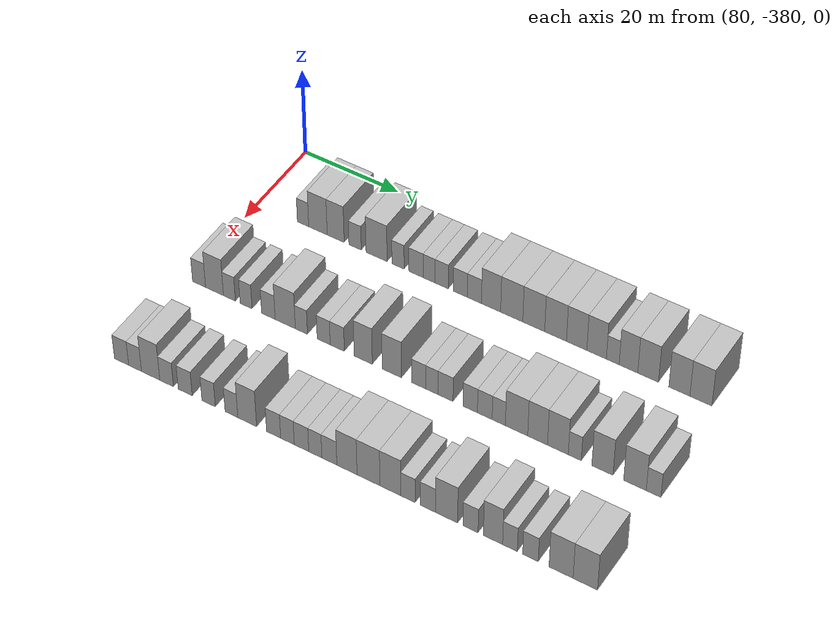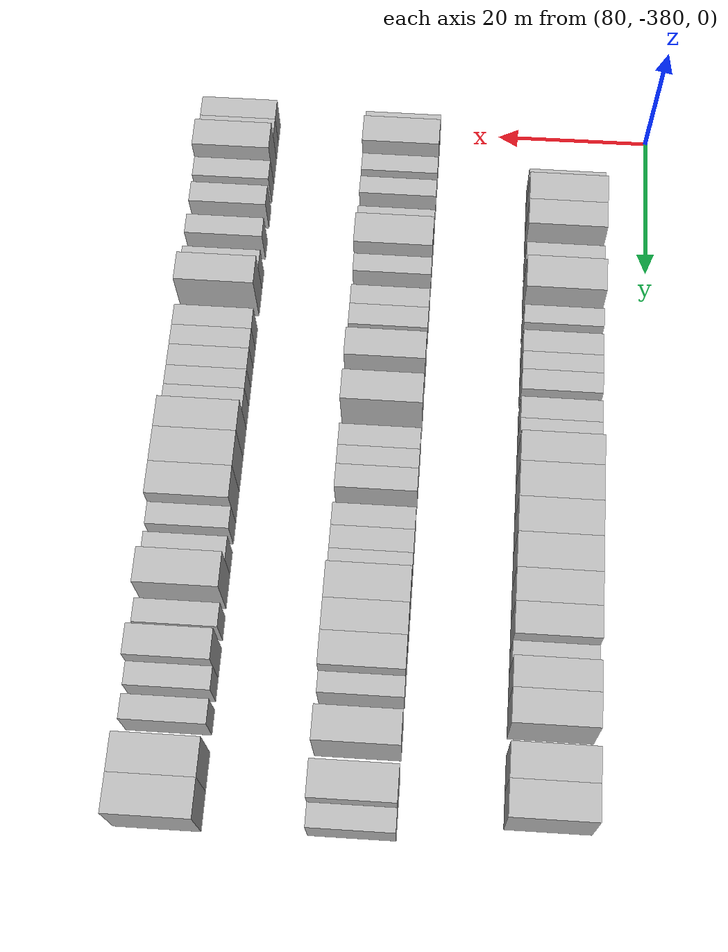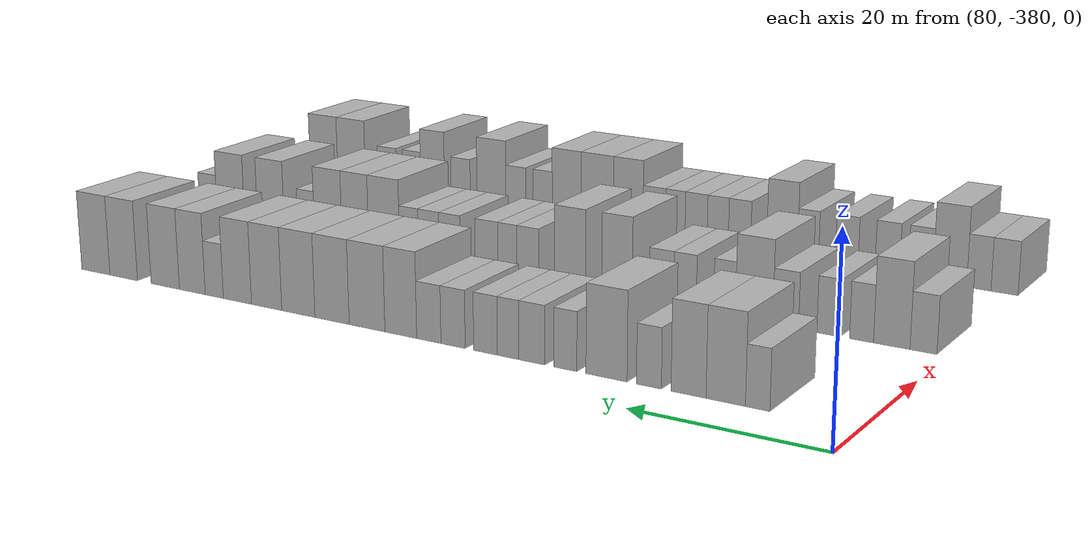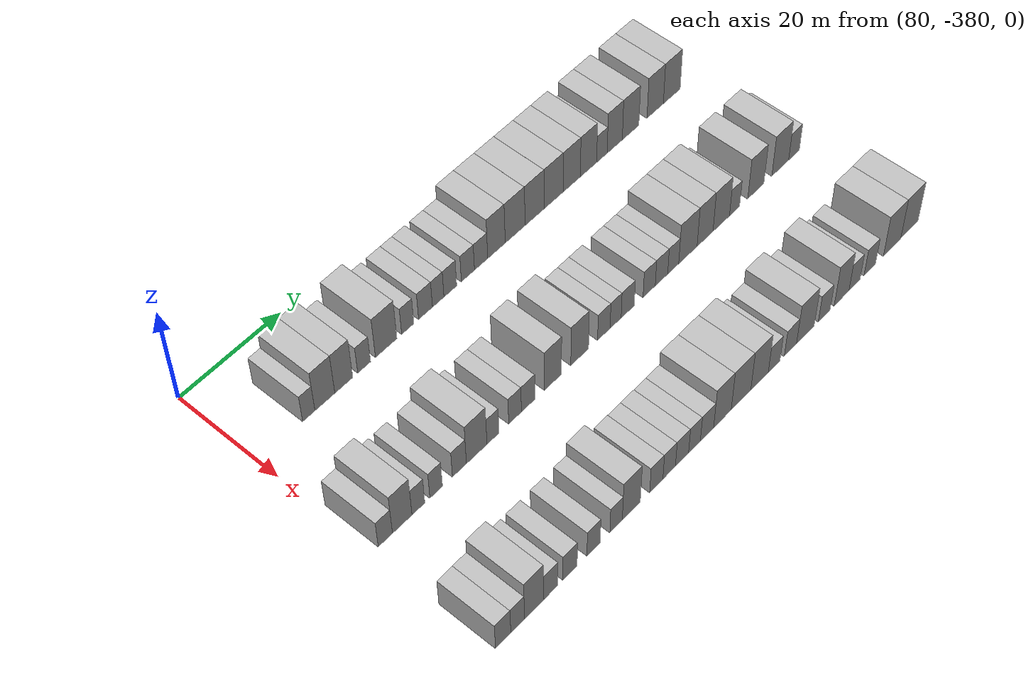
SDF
<sdf version="1.6">
 <world name="default">
  <model name="building_587">
   <static>1</static>
   <pose>91.0000 -370.1607 0 0.000000 0.000000 0.000000</pose>
   <link name="link">
    <pose>0 0 3.00 0 0 0</pose>
    <collision name="collision"><geometry><box><size>10.0000 2.4173 6.0000</size></box></geometry></collision>
    <visual name="visual">
     <cast_shadows>0</cast_shadows>
     <geometry><box><size>10.0000 2.4173 6.0000</size></box></geometry>
     <material>
      <script>
       <uri>model://HANNAS_wall/materials/scripts</uri>
       <uri>model://HANNAS_wall/materials/textures</uri>
       <name>vrc/HANNAS_wall</name>
      </script>
     </material>
    </visual>
   </link>
  </model>
  <model name="building_588">
   <static>1</static>
   <pose>91.0000 -366.9707 0 0.000000 0.000000 0.000000</pose>
   <link name="link">
    <pose>0 0 4.50 0 0 0</pose>
    <collision name="collision"><geometry><box><size>10.0000 3.9626 9.0000</size></box></geometry></collision>
    <visual name="visual">
     <cast_shadows>0</cast_shadows>
     <geometry><box><size>10.0000 3.9626 9.0000</size></box></geometry>
     <material>
      <script>
       <uri>model://HANNAS_wall/materials/scripts</uri>
       <uri>model://HANNAS_wall/materials/textures</uri>
       <name>vrc/HANNAS_wall</name>
      </script>
     </material>
    </visual>
   </link>
  </model>
  <model name="building_589">
   <static>1</static>
   <pose>91.0000 -363.1864 0 0.000000 0.000000 0.000000</pose>
   <link name="link">
    <pose>0 0 4.50 0 0 0</pose>
    <collision name="collision"><geometry><box><size>10.0000 3.6061 9.0000</size></box></geometry></collision>
    <visual name="visual">
     <cast_shadows>0</cast_shadows>
     <geometry><box><size>10.0000 3.6061 9.0000</size></box></geometry>
     <material>
      <script>
       <uri>model://HANNAS_wall/materials/scripts</uri>
       <uri>model://HANNAS_wall/materials/textures</uri>
       <name>vrc/HANNAS_wall</name>
      </script>
     </material>
    </visual>
   </link>
  </model>
  <model name="building_590">
   <static>1</static>
   <pose>91.0000 -359.0739 0 0.000000 0.000000 0.000000</pose>
   <link name="link">
    <pose>0 0 3.00 0 0 0</pose>
    <collision name="collision"><geometry><box><size>10.0000 2.6188 6.0000</size></box></geometry></collision>
    <visual name="visual">
     <cast_shadows>0</cast_shadows>
     <geometry><box><size>10.0000 2.6188 6.0000</size></box></geometry>
     <material>
      <script>
       <uri>model://HANNAS_wall/materials/scripts</uri>
       <uri>model://HANNAS_wall/materials/textures</uri>
       <name>vrc/HANNAS_wall</name>
      </script>
     </material>
    </visual>
   </link>
  </model>
  <model name="building_591">
   <static>1</static>
   <pose>91.0000 -354.5499 0 0.000000 0.000000 0.000000</pose>
   <link name="link">
    <pose>0 0 4.50 0 0 0</pose>
    <collision name="collision"><geometry><box><size>10.0000 4.4292 9.0000</size></box></geometry></collision>
    <visual name="visual">
     <cast_shadows>0</cast_shadows>
     <geometry><box><size>10.0000 4.4292 9.0000</size></box></geometry>
     <material>
      <script>
       <uri>model://HANNAS_wall/materials/scripts</uri>
       <uri>model://HANNAS_wall/materials/textures</uri>
       <name>vrc/HANNAS_wall</name>
      </script>
     </material>
    </visual>
   </link>
  </model>
  <model name="building_592">
   <static>1</static>
   <pose>91.0000 -350.0612 0 0.000000 0.000000 0.000000</pose>
   <link name="link">
    <pose>0 0 3.00 0 0 0</pose>
    <collision name="collision"><geometry><box><size>10.0000 2.5483 6.0000</size></box></geometry></collision>
    <visual name="visual">
     <cast_shadows>0</cast_shadows>
     <geometry><box><size>10.0000 2.5483 6.0000</size></box></geometry>
     <material>
      <script>
       <uri>model://HANNAS_wall/materials/scripts</uri>
       <uri>model://HANNAS_wall/materials/textures</uri>
       <name>vrc/HANNAS_wall</name>
      </script>
     </material>
    </visual>
   </link>
  </model>
  <model name="building_593">
   <static>1</static>
   <pose>91.0000 -346.3164 0 0.000000 0.000000 0.000000</pose>
   <link name="link">
    <pose>0 0 3.00 0 0 0</pose>
    <collision name="collision"><geometry><box><size>10.0000 2.9412 6.0000</size></box></geometry></collision>
    <visual name="visual">
     <cast_shadows>0</cast_shadows>
     <geometry><box><size>10.0000 2.9412 6.0000</size></box></geometry>
     <material>
      <script>
       <uri>model://HANNAS_wall/materials/scripts</uri>
       <uri>model://HANNAS_wall/materials/textures</uri>
       <name>vrc/HANNAS_wall</name>
      </script>
     </material>
    </visual>
   </link>
  </model>
  <model name="building_594">
   <static>1</static>
   <pose>91.0000 -343.6193 0 0.000000 0.000000 0.000000</pose>
   <link name="link">
    <pose>0 0 3.00 0 0 0</pose>
    <collision name="collision"><geometry><box><size>10.0000 2.4532 6.0000</size></box></geometry></collision>
    <visual name="visual">
     <cast_shadows>0</cast_shadows>
     <geometry><box><size>10.0000 2.4532 6.0000</size></box></geometry>
     <material>
      <script>
       <uri>model://HANNAS_wall/materials/scripts</uri>
       <uri>model://HANNAS_wall/materials/textures</uri>
       <name>vrc/HANNAS_wall</name>
      </script>
     </material>
    </visual>
   </link>
  </model>
  <model name="building_595">
   <static>1</static>
   <pose>91.0000 -341.0211 0 0.000000 0.000000 0.000000</pose>
   <link name="link">
    <pose>0 0 3.00 0 0 0</pose>
    <collision name="collision"><geometry><box><size>10.0000 2.7432 6.0000</size></box></geometry></collision>
    <visual name="visual">
     <cast_shadows>0</cast_shadows>
     <geometry><box><size>10.0000 2.7432 6.0000</size></box></geometry>
     <material>
      <script>
       <uri>model://HANNAS_wall/materials/scripts</uri>
       <uri>model://HANNAS_wall/materials/textures</uri>
       <name>vrc/HANNAS_wall</name>
      </script>
     </material>
    </visual>
   </link>
  </model>
  <model name="building_596">
   <static>1</static>
   <pose>91.0000 -337.2160 0 0.000000 0.000000 0.000000</pose>
   <link name="link">
    <pose>0 0 3.00 0 0 0</pose>
    <collision name="collision"><geometry><box><size>10.0000 2.8670 6.0000</size></box></geometry></collision>
    <visual name="visual">
     <cast_shadows>0</cast_shadows>
     <geometry><box><size>10.0000 2.8670 6.0000</size></box></geometry>
     <material>
      <script>
       <uri>model://HANNAS_wall/materials/scripts</uri>
       <uri>model://HANNAS_wall/materials/textures</uri>
       <name>vrc/HANNAS_wall</name>
      </script>
     </material>
    </visual>
   </link>
  </model>
  <model name="building_597">
   <static>1</static>
   <pose>91.0000 -334.3270 0 0.000000 0.000000 0.000000</pose>
   <link name="link">
    <pose>0 0 3.00 0 0 0</pose>
    <collision name="collision"><geometry><box><size>10.0000 2.9109 6.0000</size></box></geometry></collision>
    <visual name="visual">
     <cast_shadows>0</cast_shadows>
     <geometry><box><size>10.0000 2.9109 6.0000</size></box></geometry>
     <material>
      <script>
       <uri>model://HANNAS_wall/materials/scripts</uri>
       <uri>model://HANNAS_wall/materials/textures</uri>
       <name>vrc/HANNAS_wall</name>
      </script>
     </material>
    </visual>
   </link>
  </model>
  <model name="building_598">
   <static>1</static>
   <pose>91.0000 -330.9276 0 0.000000 0.000000 0.000000</pose>
   <link name="link">
    <pose>0 0 4.50 0 0 0</pose>
    <collision name="collision"><geometry><box><size>10.0000 3.8880 9.0000</size></box></geometry></collision>
    <visual name="visual">
     <cast_shadows>0</cast_shadows>
     <geometry><box><size>10.0000 3.8880 9.0000</size></box></geometry>
     <material>
      <script>
       <uri>model://HANNAS_wall/materials/scripts</uri>
       <uri>model://HANNAS_wall/materials/textures</uri>
       <name>vrc/HANNAS_wall</name>
      </script>
     </material>
    </visual>
   </link>
  </model>
  <model name="building_599">
   <static>1</static>
   <pose>91.0000 -326.7497 0 0.000000 0.000000 0.000000</pose>
   <link name="link">
    <pose>0 0 4.50 0 0 0</pose>
    <collision name="collision"><geometry><box><size>10.0000 4.4678 9.0000</size></box></geometry></collision>
    <visual name="visual">
     <cast_shadows>0</cast_shadows>
     <geometry><box><size>10.0000 4.4678 9.0000</size></box></geometry>
     <material>
      <script>
       <uri>model://HANNAS_wall/materials/scripts</uri>
       <uri>model://HANNAS_wall/materials/textures</uri>
       <name>vrc/HANNAS_wall</name>
      </script>
     </material>
    </visual>
   </link>
  </model>
  <model name="building_600">
   <static>1</static>
   <pose>91.0000 -322.3277 0 0.000000 0.000000 0.000000</pose>
   <link name="link">
    <pose>0 0 4.50 0 0 0</pose>
    <collision name="collision"><geometry><box><size>10.0000 4.3763 9.0000</size></box></geometry></collision>
    <visual name="visual">
     <cast_shadows>0</cast_shadows>
     <geometry><box><size>10.0000 4.3763 9.0000</size></box></geometry>
     <material>
      <script>
       <uri>model://HANNAS_wall/materials/scripts</uri>
       <uri>model://HANNAS_wall/materials/textures</uri>
       <name>vrc/HANNAS_wall</name>
      </script>
     </material>
    </visual>
   </link>
  </model>
  <model name="building_601">
   <static>1</static>
   <pose>91.0000 -317.9709 0 0.000000 0.000000 0.000000</pose>
   <link name="link">
    <pose>0 0 4.50 0 0 0</pose>
    <collision name="collision"><geometry><box><size>10.0000 4.3372 9.0000</size></box></geometry></collision>
    <visual name="visual">
     <cast_shadows>0</cast_shadows>
     <geometry><box><size>10.0000 4.3372 9.0000</size></box></geometry>
     <material>
      <script>
       <uri>model://HANNAS_wall/materials/scripts</uri>
       <uri>model://HANNAS_wall/materials/textures</uri>
       <name>vrc/HANNAS_wall</name>
      </script>
     </material>
    </visual>
   </link>
  </model>
  <model name="building_602">
   <static>1</static>
   <pose>91.0000 -313.7873 0 0.000000 0.000000 0.000000</pose>
   <link name="link">
    <pose>0 0 4.50 0 0 0</pose>
    <collision name="collision"><geometry><box><size>10.0000 4.0302 9.0000</size></box></geometry></collision>
    <visual name="visual">
     <cast_shadows>0</cast_shadows>
     <geometry><box><size>10.0000 4.0302 9.0000</size></box></geometry>
     <material>
      <script>
       <uri>model://HANNAS_wall/materials/scripts</uri>
       <uri>model://HANNAS_wall/materials/textures</uri>
       <name>vrc/HANNAS_wall</name>
      </script>
     </material>
    </visual>
   </link>
  </model>
  <model name="building_603">
   <static>1</static>
   <pose>91.0000 -309.8551 0 0.000000 0.000000 0.000000</pose>
   <link name="link">
    <pose>0 0 4.50 0 0 0</pose>
    <collision name="collision"><geometry><box><size>10.0000 3.8342 9.0000</size></box></geometry></collision>
    <visual name="visual">
     <cast_shadows>0</cast_shadows>
     <geometry><box><size>10.0000 3.8342 9.0000</size></box></geometry>
     <material>
      <script>
       <uri>model://HANNAS_wall/materials/scripts</uri>
       <uri>model://HANNAS_wall/materials/textures</uri>
       <name>vrc/HANNAS_wall</name>
      </script>
     </material>
    </visual>
   </link>
  </model>
  <model name="building_604">
   <static>1</static>
   <pose>91.0000 -306.6898 0 0.000000 0.000000 0.000000</pose>
   <link name="link">
    <pose>0 0 3.00 0 0 0</pose>
    <collision name="collision"><geometry><box><size>10.0000 2.4965 6.0000</size></box></geometry></collision>
    <visual name="visual">
     <cast_shadows>0</cast_shadows>
     <geometry><box><size>10.0000 2.4965 6.0000</size></box></geometry>
     <material>
      <script>
       <uri>model://HANNAS_wall/materials/scripts</uri>
       <uri>model://HANNAS_wall/materials/textures</uri>
       <name>vrc/HANNAS_wall</name>
      </script>
     </material>
    </visual>
   </link>
  </model>
  <model name="building_605">
   <static>1</static>
   <pose>91.0000 -303.6274 0 0.000000 0.000000 0.000000</pose>
   <link name="link">
    <pose>0 0 4.50 0 0 0</pose>
    <collision name="collision"><geometry><box><size>10.0000 3.6283 9.0000</size></box></geometry></collision>
    <visual name="visual">
     <cast_shadows>0</cast_shadows>
     <geometry><box><size>10.0000 3.6283 9.0000</size></box></geometry>
     <material>
      <script>
       <uri>model://HANNAS_wall/materials/scripts</uri>
       <uri>model://HANNAS_wall/materials/textures</uri>
       <name>vrc/HANNAS_wall</name>
      </script>
     </material>
    </visual>
   </link>
  </model>
  <model name="building_606">
   <static>1</static>
   <pose>91.0000 -299.8055 0 0.000000 0.000000 0.000000</pose>
   <link name="link">
    <pose>0 0 4.50 0 0 0</pose>
    <collision name="collision"><geometry><box><size>10.0000 4.0153 9.0000</size></box></geometry></collision>
    <visual name="visual">
     <cast_shadows>0</cast_shadows>
     <geometry><box><size>10.0000 4.0153 9.0000</size></box></geometry>
     <material>
      <script>
       <uri>model://HANNAS_wall/materials/scripts</uri>
       <uri>model://HANNAS_wall/materials/textures</uri>
       <name>vrc/HANNAS_wall</name>
      </script>
     </material>
    </visual>
   </link>
  </model>
  <model name="building_607">
   <static>1</static>
   <pose>91.0000 -293.7810 0 0.000000 0.000000 0.000000</pose>
   <link name="link">
    <pose>0 0 4.50 0 0 0</pose>
    <collision name="collision"><geometry><box><size>10.0000 4.0337 9.0000</size></box></geometry></collision>
    <visual name="visual">
     <cast_shadows>0</cast_shadows>
     <geometry><box><size>10.0000 4.0337 9.0000</size></box></geometry>
     <material>
      <script>
       <uri>model://HANNAS_wall/materials/scripts</uri>
       <uri>model://HANNAS_wall/materials/textures</uri>
       <name>vrc/HANNAS_wall</name>
      </script>
     </material>
    </visual>
   </link>
  </model>
  <model name="building_608">
   <static>1</static>
   <pose>91.0000 -289.6648 0 0.000000 0.000000 0.000000</pose>
   <link name="link">
    <pose>0 0 4.50 0 0 0</pose>
    <collision name="collision"><geometry><box><size>10.0000 4.1986 9.0000</size></box></geometry></collision>
    <visual name="visual">
     <cast_shadows>0</cast_shadows>
     <geometry><box><size>10.0000 4.1986 9.0000</size></box></geometry>
     <material>
      <script>
       <uri>model://HANNAS_wall/materials/scripts</uri>
       <uri>model://HANNAS_wall/materials/textures</uri>
       <name>vrc/HANNAS_wall</name>
      </script>
     </material>
    </visual>
   </link>
  </model>
  <model name="building_770">
   <static>1</static>
   <pose>113.0000 -377.6190 0 0.000000 0.000000 0.000000</pose>
   <link name="link">
    <pose>0 0 3.00 0 0 0</pose>
    <collision name="collision"><geometry><box><size>10.0000 2.7620 6.0000</size></box></geometry></collision>
    <visual name="visual">
     <cast_shadows>0</cast_shadows>
     <geometry><box><size>10.0000 2.7620 6.0000</size></box></geometry>
     <material>
      <script>
       <uri>model://HANNAS_wall/materials/scripts</uri>
       <uri>model://HANNAS_wall/materials/textures</uri>
       <name>vrc/HANNAS_wall</name>
      </script>
     </material>
    </visual>
   </link>
  </model>
  <model name="building_771">
   <static>1</static>
   <pose>113.0000 -374.3339 0 0.000000 0.000000 0.000000</pose>
   <link name="link">
    <pose>0 0 4.50 0 0 0</pose>
    <collision name="collision"><geometry><box><size>10.0000 3.8081 9.0000</size></box></geometry></collision>
    <visual name="visual">
     <cast_shadows>0</cast_shadows>
     <geometry><box><size>10.0000 3.8081 9.0000</size></box></geometry>
     <material>
      <script>
       <uri>model://HANNAS_wall/materials/scripts</uri>
       <uri>model://HANNAS_wall/materials/textures</uri>
       <name>vrc/HANNAS_wall</name>
      </script>
     </material>
    </visual>
   </link>
  </model>
  <model name="building_772">
   <static>1</static>
   <pose>113.0000 -371.1632 0 0.000000 0.000000 0.000000</pose>
   <link name="link">
    <pose>0 0 3.00 0 0 0</pose>
    <collision name="collision"><geometry><box><size>10.0000 2.5334 6.0000</size></box></geometry></collision>
    <visual name="visual">
     <cast_shadows>0</cast_shadows>
     <geometry><box><size>10.0000 2.5334 6.0000</size></box></geometry>
     <material>
      <script>
       <uri>model://HANNAS_wall/materials/scripts</uri>
       <uri>model://HANNAS_wall/materials/textures</uri>
       <name>vrc/HANNAS_wall</name>
      </script>
     </material>
    </visual>
   </link>
  </model>
  <model name="building_773">
   <static>1</static>
   <pose>113.0000 -367.6381 0 0.000000 0.000000 0.000000</pose>
   <link name="link">
    <pose>0 0 3.00 0 0 0</pose>
    <collision name="collision"><geometry><box><size>10.0000 2.5170 6.0000</size></box></geometry></collision>
    <visual name="visual">
     <cast_shadows>0</cast_shadows>
     <geometry><box><size>10.0000 2.5170 6.0000</size></box></geometry>
     <material>
      <script>
       <uri>model://HANNAS_wall/materials/scripts</uri>
       <uri>model://HANNAS_wall/materials/textures</uri>
       <name>vrc/HANNAS_wall</name>
      </script>
     </material>
    </visual>
   </link>
  </model>
  <model name="building_774">
   <static>1</static>
   <pose>113.0000 -362.9603 0 0.000000 0.000000 0.000000</pose>
   <link name="link">
    <pose>0 0 3.00 0 0 0</pose>
    <collision name="collision"><geometry><box><size>10.0000 2.8385 6.0000</size></box></geometry></collision>
    <visual name="visual">
     <cast_shadows>0</cast_shadows>
     <geometry><box><size>10.0000 2.8385 6.0000</size></box></geometry>
     <material>
      <script>
       <uri>model://HANNAS_wall/materials/scripts</uri>
       <uri>model://HANNAS_wall/materials/textures</uri>
       <name>vrc/HANNAS_wall</name>
      </script>
     </material>
    </visual>
   </link>
  </model>
  <model name="building_775">
   <static>1</static>
   <pose>113.0000 -359.4387 0 0.000000 0.000000 0.000000</pose>
   <link name="link">
    <pose>0 0 4.50 0 0 0</pose>
    <collision name="collision"><geometry><box><size>10.0000 4.2047 9.0000</size></box></geometry></collision>
    <visual name="visual">
     <cast_shadows>0</cast_shadows>
     <geometry><box><size>10.0000 4.2047 9.0000</size></box></geometry>
     <material>
      <script>
       <uri>model://HANNAS_wall/materials/scripts</uri>
       <uri>model://HANNAS_wall/materials/textures</uri>
       <name>vrc/HANNAS_wall</name>
      </script>
     </material>
    </visual>
   </link>
  </model>
  <model name="building_776">
   <static>1</static>
   <pose>113.0000 -356.0800 0 0.000000 0.000000 0.000000</pose>
   <link name="link">
    <pose>0 0 3.00 0 0 0</pose>
    <collision name="collision"><geometry><box><size>10.0000 2.5127 6.0000</size></box></geometry></collision>
    <visual name="visual">
     <cast_shadows>0</cast_shadows>
     <geometry><box><size>10.0000 2.5127 6.0000</size></box></geometry>
     <material>
      <script>
       <uri>model://HANNAS_wall/materials/scripts</uri>
       <uri>model://HANNAS_wall/materials/textures</uri>
       <name>vrc/HANNAS_wall</name>
      </script>
     </material>
    </visual>
   </link>
  </model>
  <model name="building_777">
   <static>1</static>
   <pose>113.0000 -351.4871 0 0.000000 0.000000 0.000000</pose>
   <link name="link">
    <pose>0 0 3.00 0 0 0</pose>
    <collision name="collision"><geometry><box><size>10.0000 2.6731 6.0000</size></box></geometry></collision>
    <visual name="visual">
     <cast_shadows>0</cast_shadows>
     <geometry><box><size>10.0000 2.6731 6.0000</size></box></geometry>
     <material>
      <script>
       <uri>model://HANNAS_wall/materials/scripts</uri>
       <uri>model://HANNAS_wall/materials/textures</uri>
       <name>vrc/HANNAS_wall</name>
      </script>
     </material>
    </visual>
   </link>
  </model>
  <model name="building_778">
   <static>1</static>
   <pose>113.0000 -348.6997 0 0.000000 0.000000 0.000000</pose>
   <link name="link">
    <pose>0 0 3.00 0 0 0</pose>
    <collision name="collision"><geometry><box><size>10.0000 2.9017 6.0000</size></box></geometry></collision>
    <visual name="visual">
     <cast_shadows>0</cast_shadows>
     <geometry><box><size>10.0000 2.9017 6.0000</size></box></geometry>
     <material>
      <script>
       <uri>model://HANNAS_wall/materials/scripts</uri>
       <uri>model://HANNAS_wall/materials/textures</uri>
       <name>vrc/HANNAS_wall</name>
      </script>
     </material>
    </visual>
   </link>
  </model>
  <model name="building_779">
   <static>1</static>
   <pose>113.0000 -343.4027 0 0.000000 0.000000 0.000000</pose>
   <link name="link">
    <pose>0 0 4.50 0 0 0</pose>
    <collision name="collision"><geometry><box><size>10.0000 3.6924 9.0000</size></box></geometry></collision>
    <visual name="visual">
     <cast_shadows>0</cast_shadows>
     <geometry><box><size>10.0000 3.6924 9.0000</size></box></geometry>
     <material>
      <script>
       <uri>model://HANNAS_wall/materials/scripts</uri>
       <uri>model://HANNAS_wall/materials/textures</uri>
       <name>vrc/HANNAS_wall</name>
      </script>
     </material>
    </visual>
   </link>
  </model>
  <model name="building_780">
   <static>1</static>
   <pose>113.0000 -337.6083 0 0.000000 0.000000 0.000000</pose>
   <link name="link">
    <pose>0 0 4.50 0 0 0</pose>
    <collision name="collision"><geometry><box><size>10.0000 3.8965 9.0000</size></box></geometry></collision>
    <visual name="visual">
     <cast_shadows>0</cast_shadows>
     <geometry><box><size>10.0000 3.8965 9.0000</size></box></geometry>
     <material>
      <script>
       <uri>model://HANNAS_wall/materials/scripts</uri>
       <uri>model://HANNAS_wall/materials/textures</uri>
       <name>vrc/HANNAS_wall</name>
      </script>
     </material>
    </visual>
   </link>
  </model>
  <model name="building_781">
   <static>1</static>
   <pose>113.0000 -332.2630 0 0.000000 0.000000 0.000000</pose>
   <link name="link">
    <pose>0 0 3.00 0 0 0</pose>
    <collision name="collision"><geometry><box><size>10.0000 2.7940 6.0000</size></box></geometry></collision>
    <visual name="visual">
     <cast_shadows>0</cast_shadows>
     <geometry><box><size>10.0000 2.7940 6.0000</size></box></geometry>
     <material>
      <script>
       <uri>model://HANNAS_wall/materials/scripts</uri>
       <uri>model://HANNAS_wall/materials/textures</uri>
       <name>vrc/HANNAS_wall</name>
      </script>
     </material>
    </visual>
   </link>
  </model>
  <model name="building_782">
   <static>1</static>
   <pose>113.0000 -329.6279 0 0.000000 0.000000 0.000000</pose>
   <link name="link">
    <pose>0 0 3.00 0 0 0</pose>
    <collision name="collision"><geometry><box><size>10.0000 2.4762 6.0000</size></box></geometry></collision>
    <visual name="visual">
     <cast_shadows>0</cast_shadows>
     <geometry><box><size>10.0000 2.4762 6.0000</size></box></geometry>
     <material>
      <script>
       <uri>model://HANNAS_wall/materials/scripts</uri>
       <uri>model://HANNAS_wall/materials/textures</uri>
       <name>vrc/HANNAS_wall</name>
      </script>
     </material>
    </visual>
   </link>
  </model>
  <model name="building_783">
   <static>1</static>
   <pose>113.0000 -326.8995 0 0.000000 0.000000 0.000000</pose>
   <link name="link">
    <pose>0 0 3.00 0 0 0</pose>
    <collision name="collision"><geometry><box><size>10.0000 2.9807 6.0000</size></box></geometry></collision>
    <visual name="visual">
     <cast_shadows>0</cast_shadows>
     <geometry><box><size>10.0000 2.9807 6.0000</size></box></geometry>
     <material>
      <script>
       <uri>model://HANNAS_wall/materials/scripts</uri>
       <uri>model://HANNAS_wall/materials/textures</uri>
       <name>vrc/HANNAS_wall</name>
      </script>
     </material>
    </visual>
   </link>
  </model>
  <model name="building_784">
   <static>1</static>
   <pose>113.0000 -322.0041 0 0.000000 0.000000 0.000000</pose>
   <link name="link">
    <pose>0 0 3.00 0 0 0</pose>
    <collision name="collision"><geometry><box><size>10.0000 2.8102 6.0000</size></box></geometry></collision>
    <visual name="visual">
     <cast_shadows>0</cast_shadows>
     <geometry><box><size>10.0000 2.8102 6.0000</size></box></geometry>
     <material>
      <script>
       <uri>model://HANNAS_wall/materials/scripts</uri>
       <uri>model://HANNAS_wall/materials/textures</uri>
       <name>vrc/HANNAS_wall</name>
      </script>
     </material>
    </visual>
   </link>
  </model>
  <model name="building_785">
   <static>1</static>
   <pose>113.0000 -319.1581 0 0.000000 0.000000 0.000000</pose>
   <link name="link">
    <pose>0 0 3.00 0 0 0</pose>
    <collision name="collision"><geometry><box><size>10.0000 2.8817 6.0000</size></box></geometry></collision>
    <visual name="visual">
     <cast_shadows>0</cast_shadows>
     <geometry><box><size>10.0000 2.8817 6.0000</size></box></geometry>
     <material>
      <script>
       <uri>model://HANNAS_wall/materials/scripts</uri>
       <uri>model://HANNAS_wall/materials/textures</uri>
       <name>vrc/HANNAS_wall</name>
      </script>
     </material>
    </visual>
   </link>
  </model>
  <model name="building_786">
   <static>1</static>
   <pose>113.0000 -316.4295 0 0.000000 0.000000 0.000000</pose>
   <link name="link">
    <pose>0 0 3.00 0 0 0</pose>
    <collision name="collision"><geometry><box><size>10.0000 2.5755 6.0000</size></box></geometry></collision>
    <visual name="visual">
     <cast_shadows>0</cast_shadows>
     <geometry><box><size>10.0000 2.5755 6.0000</size></box></geometry>
     <material>
      <script>
       <uri>model://HANNAS_wall/materials/scripts</uri>
       <uri>model://HANNAS_wall/materials/textures</uri>
       <name>vrc/HANNAS_wall</name>
      </script>
     </material>
    </visual>
   </link>
  </model>
  <model name="building_787">
   <static>1</static>
   <pose>113.0000 -312.9722 0 0.000000 0.000000 0.000000</pose>
   <link name="link">
    <pose>0 0 4.50 0 0 0</pose>
    <collision name="collision"><geometry><box><size>10.0000 4.3391 9.0000</size></box></geometry></collision>
    <visual name="visual">
     <cast_shadows>0</cast_shadows>
     <geometry><box><size>10.0000 4.3391 9.0000</size></box></geometry>
     <material>
      <script>
       <uri>model://HANNAS_wall/materials/scripts</uri>
       <uri>model://HANNAS_wall/materials/textures</uri>
       <name>vrc/HANNAS_wall</name>
      </script>
     </material>
    </visual>
   </link>
  </model>
  <model name="building_788">
   <static>1</static>
   <pose>113.0000 -308.8972 0 0.000000 0.000000 0.000000</pose>
   <link name="link">
    <pose>0 0 4.50 0 0 0</pose>
    <collision name="collision"><geometry><box><size>10.0000 3.8109 9.0000</size></box></geometry></collision>
    <visual name="visual">
     <cast_shadows>0</cast_shadows>
     <geometry><box><size>10.0000 3.8109 9.0000</size></box></geometry>
     <material>
      <script>
       <uri>model://HANNAS_wall/materials/scripts</uri>
       <uri>model://HANNAS_wall/materials/textures</uri>
       <name>vrc/HANNAS_wall</name>
      </script>
     </material>
    </visual>
   </link>
  </model>
  <model name="building_789">
   <static>1</static>
   <pose>113.0000 -304.9971 0 0.000000 0.000000 0.000000</pose>
   <link name="link">
    <pose>0 0 4.50 0 0 0</pose>
    <collision name="collision"><geometry><box><size>10.0000 3.9893 9.0000</size></box></geometry></collision>
    <visual name="visual">
     <cast_shadows>0</cast_shadows>
     <geometry><box><size>10.0000 3.9893 9.0000</size></box></geometry>
     <material>
      <script>
       <uri>model://HANNAS_wall/materials/scripts</uri>
       <uri>model://HANNAS_wall/materials/textures</uri>
       <name>vrc/HANNAS_wall</name>
      </script>
     </material>
    </visual>
   </link>
  </model>
  <model name="building_790">
   <static>1</static>
   <pose>113.0000 -301.7628 0 0.000000 0.000000 0.000000</pose>
   <link name="link">
    <pose>0 0 3.00 0 0 0</pose>
    <collision name="collision"><geometry><box><size>10.0000 2.4794 6.0000</size></box></geometry></collision>
    <visual name="visual">
     <cast_shadows>0</cast_shadows>
     <geometry><box><size>10.0000 2.4794 6.0000</size></box></geometry>
     <material>
      <script>
       <uri>model://HANNAS_wall/materials/scripts</uri>
       <uri>model://HANNAS_wall/materials/textures</uri>
       <name>vrc/HANNAS_wall</name>
      </script>
     </material>
    </visual>
   </link>
  </model>
  <model name="building_791">
   <static>1</static>
   <pose>113.0000 -296.5198 0 0.000000 0.000000 0.000000</pose>
   <link name="link">
    <pose>0 0 4.50 0 0 0</pose>
    <collision name="collision"><geometry><box><size>10.0000 4.0066 9.0000</size></box></geometry></collision>
    <visual name="visual">
     <cast_shadows>0</cast_shadows>
     <geometry><box><size>10.0000 4.0066 9.0000</size></box></geometry>
     <material>
      <script>
       <uri>model://HANNAS_wall/materials/scripts</uri>
       <uri>model://HANNAS_wall/materials/textures</uri>
       <name>vrc/HANNAS_wall</name>
      </script>
     </material>
    </visual>
   </link>
  </model>
  <model name="building_792">
   <static>1</static>
   <pose>113.0000 -290.4030 0 0.000000 0.000000 0.000000</pose>
   <link name="link">
    <pose>0 0 4.50 0 0 0</pose>
    <collision name="collision"><geometry><box><size>10.0000 4.2271 9.0000</size></box></geometry></collision>
    <visual name="visual">
     <cast_shadows>0</cast_shadows>
     <geometry><box><size>10.0000 4.2271 9.0000</size></box></geometry>
     <material>
      <script>
       <uri>model://HANNAS_wall/materials/scripts</uri>
       <uri>model://HANNAS_wall/materials/textures</uri>
       <name>vrc/HANNAS_wall</name>
      </script>
     </material>
    </visual>
   </link>
  </model>
  <model name="building_793">
   <static>1</static>
   <pose>113.0000 -286.9200 0 0.000000 0.000000 0.000000</pose>
   <link name="link">
    <pose>0 0 3.00 0 0 0</pose>
    <collision name="collision"><geometry><box><size>10.0000 2.7388 6.0000</size></box></geometry></collision>
    <visual name="visual">
     <cast_shadows>0</cast_shadows>
     <geometry><box><size>10.0000 2.7388 6.0000</size></box></geometry>
     <material>
      <script>
       <uri>model://HANNAS_wall/materials/scripts</uri>
       <uri>model://HANNAS_wall/materials/textures</uri>
       <name>vrc/HANNAS_wall</name>
      </script>
     </material>
    </visual>
   </link>
  </model>
  <model name="building_952">
   <static>1</static>
   <pose>135.0000 -378.5107 0 0.000000 0.000000 0.000000</pose>
   <link name="link">
    <pose>0 0 3.00 0 0 0</pose>
    <collision name="collision"><geometry><box><size>10.0000 2.9786 6.0000</size></box></geometry></collision>
    <visual name="visual">
     <cast_shadows>0</cast_shadows>
     <geometry><box><size>10.0000 2.9786 6.0000</size></box></geometry>
     <material>
      <script>
       <uri>model://HANNAS_wall/materials/scripts</uri>
       <uri>model://HANNAS_wall/materials/textures</uri>
       <name>vrc/HANNAS_wall</name>
      </script>
     </material>
    </visual>
   </link>
  </model>
  <model name="building_953">
   <static>1</static>
   <pose>135.0000 -375.6725 0 0.000000 0.000000 0.000000</pose>
   <link name="link">
    <pose>0 0 3.00 0 0 0</pose>
    <collision name="collision"><geometry><box><size>10.0000 2.6978 6.0000</size></box></geometry></collision>
    <visual name="visual">
     <cast_shadows>0</cast_shadows>
     <geometry><box><size>10.0000 2.6978 6.0000</size></box></geometry>
     <material>
      <script>
       <uri>model://HANNAS_wall/materials/scripts</uri>
       <uri>model://HANNAS_wall/materials/textures</uri>
       <name>vrc/HANNAS_wall</name>
      </script>
     </material>
    </visual>
   </link>
  </model>
  <model name="building_954">
   <static>1</static>
   <pose>135.0000 -372.4101 0 0.000000 0.000000 0.000000</pose>
   <link name="link">
    <pose>0 0 4.50 0 0 0</pose>
    <collision name="collision"><geometry><box><size>10.0000 3.8271 9.0000</size></box></geometry></collision>
    <visual name="visual">
     <cast_shadows>0</cast_shadows>
     <geometry><box><size>10.0000 3.8271 9.0000</size></box></geometry>
     <material>
      <script>
       <uri>model://HANNAS_wall/materials/scripts</uri>
       <uri>model://HANNAS_wall/materials/textures</uri>
       <name>vrc/HANNAS_wall</name>
      </script>
     </material>
    </visual>
   </link>
  </model>
  <model name="building_955">
   <static>1</static>
   <pose>135.0000 -369.0810 0 0.000000 0.000000 0.000000</pose>
   <link name="link">
    <pose>0 0 3.00 0 0 0</pose>
    <collision name="collision"><geometry><box><size>10.0000 2.8310 6.0000</size></box></geometry></collision>
    <visual name="visual">
     <cast_shadows>0</cast_shadows>
     <geometry><box><size>10.0000 2.8310 6.0000</size></box></geometry>
     <material>
      <script>
       <uri>model://HANNAS_wall/materials/scripts</uri>
       <uri>model://HANNAS_wall/materials/textures</uri>
       <name>vrc/HANNAS_wall</name>
      </script>
     </material>
    </visual>
   </link>
  </model>
  <model name="building_956">
   <static>1</static>
   <pose>135.0000 -365.2248 0 0.000000 0.000000 0.000000</pose>
   <link name="link">
    <pose>0 0 3.00 0 0 0</pose>
    <collision name="collision"><geometry><box><size>10.0000 2.8815 6.0000</size></box></geometry></collision>
    <visual name="visual">
     <cast_shadows>0</cast_shadows>
     <geometry><box><size>10.0000 2.8815 6.0000</size></box></geometry>
     <material>
      <script>
       <uri>model://HANNAS_wall/materials/scripts</uri>
       <uri>model://HANNAS_wall/materials/textures</uri>
       <name>vrc/HANNAS_wall</name>
      </script>
     </material>
    </visual>
   </link>
  </model>
  <model name="building_957">
   <static>1</static>
   <pose>135.0000 -360.4107 0 0.000000 0.000000 0.000000</pose>
   <link name="link">
    <pose>0 0 3.00 0 0 0</pose>
    <collision name="collision"><geometry><box><size>10.0000 2.7467 6.0000</size></box></geometry></collision>
    <visual name="visual">
     <cast_shadows>0</cast_shadows>
     <geometry><box><size>10.0000 2.7467 6.0000</size></box></geometry>
     <material>
      <script>
       <uri>model://HANNAS_wall/materials/scripts</uri>
       <uri>model://HANNAS_wall/materials/textures</uri>
       <name>vrc/HANNAS_wall</name>
      </script>
     </material>
    </visual>
   </link>
  </model>
  <model name="building_958">
   <static>1</static>
   <pose>135.0000 -355.7416 0 0.000000 0.000000 0.000000</pose>
   <link name="link">
    <pose>0 0 3.00 0 0 0</pose>
    <collision name="collision"><geometry><box><size>10.0000 2.5915 6.0000</size></box></geometry></collision>
    <visual name="visual">
     <cast_shadows>0</cast_shadows>
     <geometry><box><size>10.0000 2.5915 6.0000</size></box></geometry>
     <material>
      <script>
       <uri>model://HANNAS_wall/materials/scripts</uri>
       <uri>model://HANNAS_wall/materials/textures</uri>
       <name>vrc/HANNAS_wall</name>
      </script>
     </material>
    </visual>
   </link>
  </model>
  <model name="building_959">
   <static>1</static>
   <pose>135.0000 -352.5395 0 0.000000 0.000000 0.000000</pose>
   <link name="link">
    <pose>0 0 4.50 0 0 0</pose>
    <collision name="collision"><geometry><box><size>10.0000 3.8128 9.0000</size></box></geometry></collision>
    <visual name="visual">
     <cast_shadows>0</cast_shadows>
     <geometry><box><size>10.0000 3.8128 9.0000</size></box></geometry>
     <material>
      <script>
       <uri>model://HANNAS_wall/materials/scripts</uri>
       <uri>model://HANNAS_wall/materials/textures</uri>
       <name>vrc/HANNAS_wall</name>
      </script>
     </material>
    </visual>
   </link>
  </model>
  <model name="building_960">
   <static>1</static>
   <pose>135.0000 -347.2139 0 0.000000 0.000000 0.000000</pose>
   <link name="link">
    <pose>0 0 3.00 0 0 0</pose>
    <collision name="collision"><geometry><box><size>10.0000 2.8383 6.0000</size></box></geometry></collision>
    <visual name="visual">
     <cast_shadows>0</cast_shadows>
     <geometry><box><size>10.0000 2.8383 6.0000</size></box></geometry>
     <material>
      <script>
       <uri>model://HANNAS_wall/materials/scripts</uri>
       <uri>model://HANNAS_wall/materials/textures</uri>
       <name>vrc/HANNAS_wall</name>
      </script>
     </material>
    </visual>
   </link>
  </model>
  <model name="building_961">
   <static>1</static>
   <pose>135.0000 -344.4307 0 0.000000 0.000000 0.000000</pose>
   <link name="link">
    <pose>0 0 3.00 0 0 0</pose>
    <collision name="collision"><geometry><box><size>10.0000 2.7282 6.0000</size></box></geometry></collision>
    <visual name="visual">
     <cast_shadows>0</cast_shadows>
     <geometry><box><size>10.0000 2.7282 6.0000</size></box></geometry>
     <material>
      <script>
       <uri>model://HANNAS_wall/materials/scripts</uri>
       <uri>model://HANNAS_wall/materials/textures</uri>
       <name>vrc/HANNAS_wall</name>
      </script>
     </material>
    </visual>
   </link>
  </model>
  <model name="building_962">
   <static>1</static>
   <pose>135.0000 -341.6261 0 0.000000 0.000000 0.000000</pose>
   <link name="link">
    <pose>0 0 3.00 0 0 0</pose>
    <collision name="collision"><geometry><box><size>10.0000 2.8809 6.0000</size></box></geometry></collision>
    <visual name="visual">
     <cast_shadows>0</cast_shadows>
     <geometry><box><size>10.0000 2.8809 6.0000</size></box></geometry>
     <material>
      <script>
       <uri>model://HANNAS_wall/materials/scripts</uri>
       <uri>model://HANNAS_wall/materials/textures</uri>
       <name>vrc/HANNAS_wall</name>
      </script>
     </material>
    </visual>
   </link>
  </model>
  <model name="building_963">
   <static>1</static>
   <pose>135.0000 -338.8868 0 0.000000 0.000000 0.000000</pose>
   <link name="link">
    <pose>0 0 3.00 0 0 0</pose>
    <collision name="collision"><geometry><box><size>10.0000 2.5977 6.0000</size></box></geometry></collision>
    <visual name="visual">
     <cast_shadows>0</cast_shadows>
     <geometry><box><size>10.0000 2.5977 6.0000</size></box></geometry>
     <material>
      <script>
       <uri>model://HANNAS_wall/materials/scripts</uri>
       <uri>model://HANNAS_wall/materials/textures</uri>
       <name>vrc/HANNAS_wall</name>
      </script>
     </material>
    </visual>
   </link>
  </model>
  <model name="building_964">
   <static>1</static>
   <pose>135.0000 -336.1047 0 0.000000 0.000000 0.000000</pose>
   <link name="link">
    <pose>0 0 3.00 0 0 0</pose>
    <collision name="collision"><geometry><box><size>10.0000 2.9665 6.0000</size></box></geometry></collision>
    <visual name="visual">
     <cast_shadows>0</cast_shadows>
     <geometry><box><size>10.0000 2.9665 6.0000</size></box></geometry>
     <material>
      <script>
       <uri>model://HANNAS_wall/materials/scripts</uri>
       <uri>model://HANNAS_wall/materials/textures</uri>
       <name>vrc/HANNAS_wall</name>
      </script>
     </material>
    </visual>
   </link>
  </model>
  <model name="building_965">
   <static>1</static>
   <pose>135.0000 -332.6356 0 0.000000 0.000000 0.000000</pose>
   <link name="link">
    <pose>0 0 4.50 0 0 0</pose>
    <collision name="collision"><geometry><box><size>10.0000 3.9717 9.0000</size></box></geometry></collision>
    <visual name="visual">
     <cast_shadows>0</cast_shadows>
     <geometry><box><size>10.0000 3.9717 9.0000</size></box></geometry>
     <material>
      <script>
       <uri>model://HANNAS_wall/materials/scripts</uri>
       <uri>model://HANNAS_wall/materials/textures</uri>
       <name>vrc/HANNAS_wall</name>
      </script>
     </material>
    </visual>
   </link>
  </model>
  <model name="building_966">
   <static>1</static>
   <pose>135.0000 -328.4144 0 0.000000 0.000000 0.000000</pose>
   <link name="link">
    <pose>0 0 4.50 0 0 0</pose>
    <collision name="collision"><geometry><box><size>10.0000 4.4708 9.0000</size></box></geometry></collision>
    <visual name="visual">
     <cast_shadows>0</cast_shadows>
     <geometry><box><size>10.0000 4.4708 9.0000</size></box></geometry>
     <material>
      <script>
       <uri>model://HANNAS_wall/materials/scripts</uri>
       <uri>model://HANNAS_wall/materials/textures</uri>
       <name>vrc/HANNAS_wall</name>
      </script>
     </material>
    </visual>
   </link>
  </model>
  <model name="building_967">
   <static>1</static>
   <pose>135.0000 -324.1502 0 0.000000 0.000000 0.000000</pose>
   <link name="link">
    <pose>0 0 4.50 0 0 0</pose>
    <collision name="collision"><geometry><box><size>10.0000 4.0574 9.0000</size></box></geometry></collision>
    <visual name="visual">
     <cast_shadows>0</cast_shadows>
     <geometry><box><size>10.0000 4.0574 9.0000</size></box></geometry>
     <material>
      <script>
       <uri>model://HANNAS_wall/materials/scripts</uri>
       <uri>model://HANNAS_wall/materials/textures</uri>
       <name>vrc/HANNAS_wall</name>
      </script>
     </material>
    </visual>
   </link>
  </model>
  <model name="building_968">
   <static>1</static>
   <pose>135.0000 -320.7481 0 0.000000 0.000000 0.000000</pose>
   <link name="link">
    <pose>0 0 3.00 0 0 0</pose>
    <collision name="collision"><geometry><box><size>10.0000 2.7469 6.0000</size></box></geometry></collision>
    <visual name="visual">
     <cast_shadows>0</cast_shadows>
     <geometry><box><size>10.0000 2.7469 6.0000</size></box></geometry>
     <material>
      <script>
       <uri>model://HANNAS_wall/materials/scripts</uri>
       <uri>model://HANNAS_wall/materials/textures</uri>
       <name>vrc/HANNAS_wall</name>
      </script>
     </material>
    </visual>
   </link>
  </model>
  <model name="building_969">
   <static>1</static>
   <pose>135.0000 -316.9273 0 0.000000 0.000000 0.000000</pose>
   <link name="link">
    <pose>0 0 3.00 0 0 0</pose>
    <collision name="collision"><geometry><box><size>10.0000 2.8949 6.0000</size></box></geometry></collision>
    <visual name="visual">
     <cast_shadows>0</cast_shadows>
     <geometry><box><size>10.0000 2.8949 6.0000</size></box></geometry>
     <material>
      <script>
       <uri>model://HANNAS_wall/materials/scripts</uri>
       <uri>model://HANNAS_wall/materials/textures</uri>
       <name>vrc/HANNAS_wall</name>
      </script>
     </material>
    </visual>
   </link>
  </model>
  <model name="building_970">
   <static>1</static>
   <pose>135.0000 -313.3627 0 0.000000 0.000000 0.000000</pose>
   <link name="link">
    <pose>0 0 4.50 0 0 0</pose>
    <collision name="collision"><geometry><box><size>10.0000 4.2341 9.0000</size></box></geometry></collision>
    <visual name="visual">
     <cast_shadows>0</cast_shadows>
     <geometry><box><size>10.0000 4.2341 9.0000</size></box></geometry>
     <material>
      <script>
       <uri>model://HANNAS_wall/materials/scripts</uri>
       <uri>model://HANNAS_wall/materials/textures</uri>
       <name>vrc/HANNAS_wall</name>
      </script>
     </material>
    </visual>
   </link>
  </model>
  <model name="building_971">
   <static>1</static>
   <pose>135.0000 -308.8125 0 0.000000 0.000000 0.000000</pose>
   <link name="link">
    <pose>0 0 3.00 0 0 0</pose>
    <collision name="collision"><geometry><box><size>10.0000 2.8663 6.0000</size></box></geometry></collision>
    <visual name="visual">
     <cast_shadows>0</cast_shadows>
     <geometry><box><size>10.0000 2.8663 6.0000</size></box></geometry>
     <material>
      <script>
       <uri>model://HANNAS_wall/materials/scripts</uri>
       <uri>model://HANNAS_wall/materials/textures</uri>
       <name>vrc/HANNAS_wall</name>
      </script>
     </material>
    </visual>
   </link>
  </model>
  <model name="building_972">
   <static>1</static>
   <pose>135.0000 -304.5689 0 0.000000 0.000000 0.000000</pose>
   <link name="link">
    <pose>0 0 4.50 0 0 0</pose>
    <collision name="collision"><geometry><box><size>10.0000 3.6209 9.0000</size></box></geometry></collision>
    <visual name="visual">
     <cast_shadows>0</cast_shadows>
     <geometry><box><size>10.0000 3.6209 9.0000</size></box></geometry>
     <material>
      <script>
       <uri>model://HANNAS_wall/materials/scripts</uri>
       <uri>model://HANNAS_wall/materials/textures</uri>
       <name>vrc/HANNAS_wall</name>
      </script>
     </material>
    </visual>
   </link>
  </model>
  <model name="building_973">
   <static>1</static>
   <pose>135.0000 -301.3845 0 0.000000 0.000000 0.000000</pose>
   <link name="link">
    <pose>0 0 3.00 0 0 0</pose>
    <collision name="collision"><geometry><box><size>10.0000 2.7479 6.0000</size></box></geometry></collision>
    <visual name="visual">
     <cast_shadows>0</cast_shadows>
     <geometry><box><size>10.0000 2.7479 6.0000</size></box></geometry>
     <material>
      <script>
       <uri>model://HANNAS_wall/materials/scripts</uri>
       <uri>model://HANNAS_wall/materials/textures</uri>
       <name>vrc/HANNAS_wall</name>
      </script>
     </material>
    </visual>
   </link>
  </model>
  <model name="building_974">
   <static>1</static>
   <pose>135.0000 -297.5654 0 0.000000 0.000000 0.000000</pose>
   <link name="link">
    <pose>0 0 3.00 0 0 0</pose>
    <collision name="collision"><geometry><box><size>10.0000 2.8904 6.0000</size></box></geometry></collision>
    <visual name="visual">
     <cast_shadows>0</cast_shadows>
     <geometry><box><size>10.0000 2.8904 6.0000</size></box></geometry>
     <material>
      <script>
       <uri>model://HANNAS_wall/materials/scripts</uri>
       <uri>model://HANNAS_wall/materials/textures</uri>
       <name>vrc/HANNAS_wall</name>
      </script>
     </material>
    </visual>
   </link>
  </model>
  <model name="building_975">
   <static>1</static>
   <pose>135.0000 -291.9040 0 0.000000 0.000000 0.000000</pose>
   <link name="link">
    <pose>0 0 4.50 0 0 0</pose>
    <collision name="collision"><geometry><box><size>10.0000 4.4323 9.0000</size></box></geometry></collision>
    <visual name="visual">
     <cast_shadows>0</cast_shadows>
     <geometry><box><size>10.0000 4.4323 9.0000</size></box></geometry>
     <material>
      <script>
       <uri>model://HANNAS_wall/materials/scripts</uri>
       <uri>model://HANNAS_wall/materials/textures</uri>
       <name>vrc/HANNAS_wall</name>
      </script>
     </material>
    </visual>
   </link>
  </model>
  <model name="building_976">
   <static>1</static>
   <pose>135.0000 -287.4529 0 0.000000 0.000000 0.000000</pose>
   <link name="link">
    <pose>0 0 4.50 0 0 0</pose>
    <collision name="collision"><geometry><box><size>10.0000 4.4700 9.0000</size></box></geometry></collision>
    <visual name="visual">
     <cast_shadows>0</cast_shadows>
     <geometry><box><size>10.0000 4.4700 9.0000</size></box></geometry>
     <material>
      <script>
       <uri>model://HANNAS_wall/materials/scripts</uri>
       <uri>model://HANNAS_wall/materials/textures</uri>
       <name>vrc/HANNAS_wall</name>
      </script>
     </material>
    </visual>
   </link>
  </model>
 </world>
</sdf>
